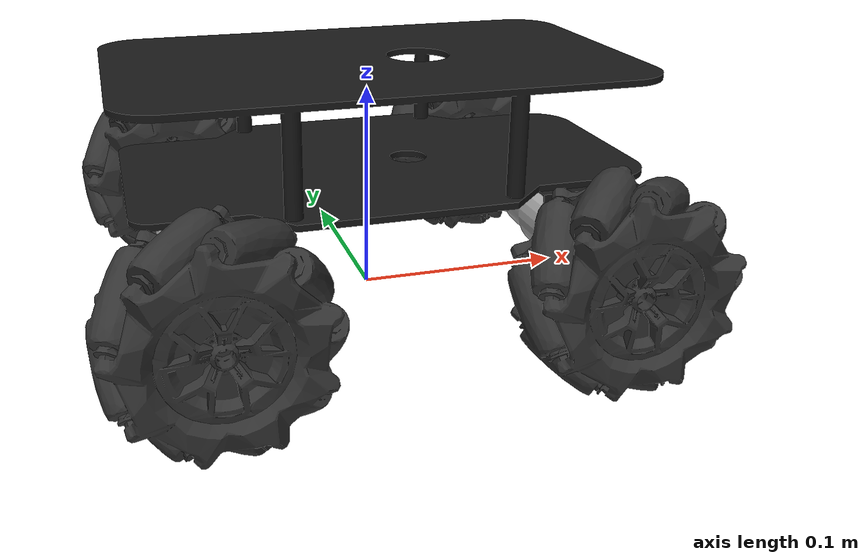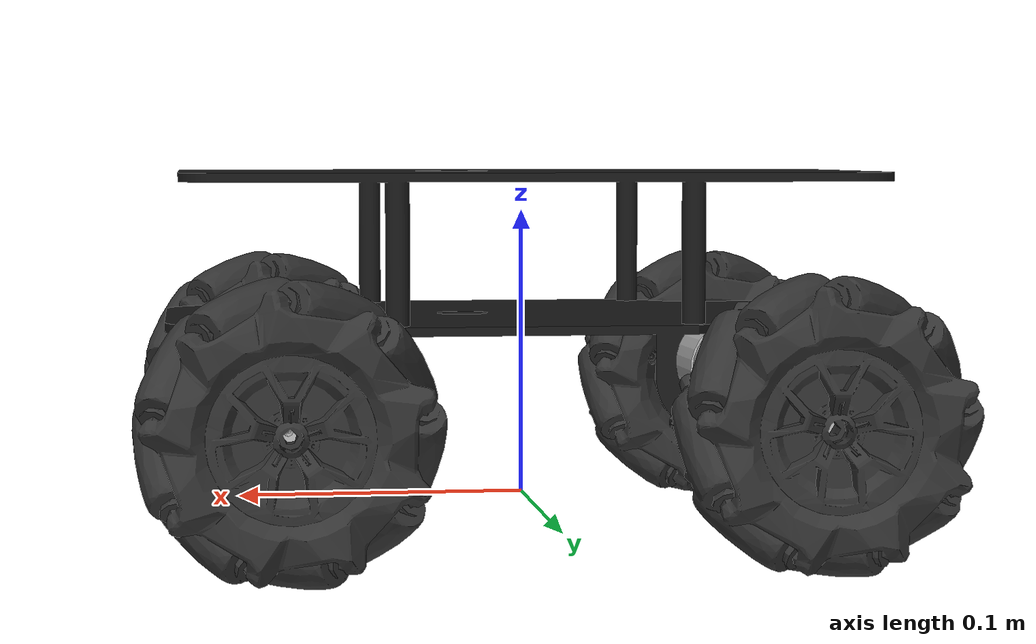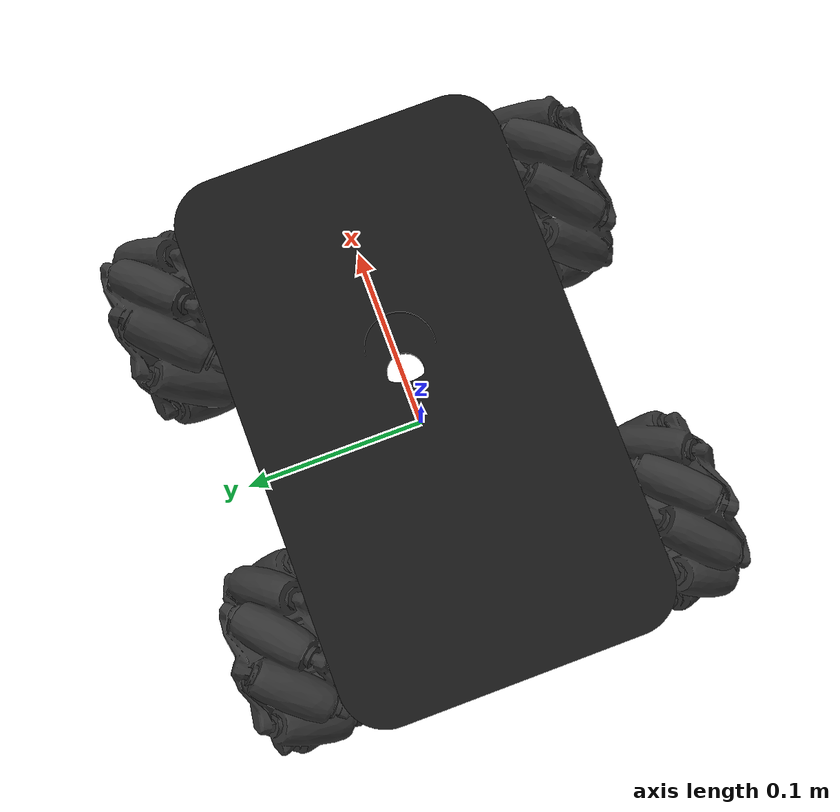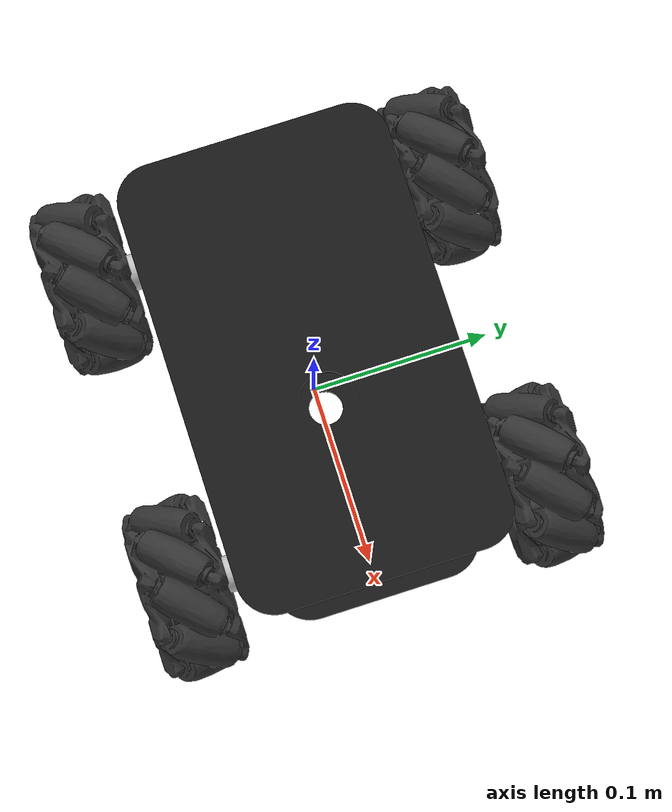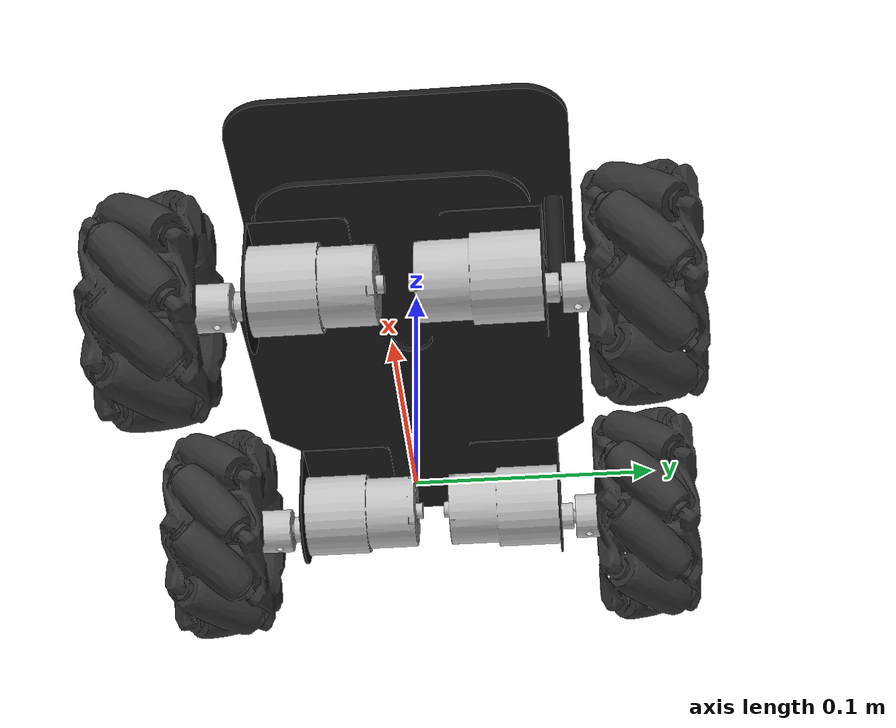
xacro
<?xml version="1.0"?>
<robot name="int_brain" xmlns:xacro="http://www.ros.org/wiki/xacro">

  <xacro:arg name="controllers_yaml" default="" />
  <xacro:arg name="sim" default="true" />

  <xacro:include filename="$(find int_brain_description)/urdf/macros.xacro" />
  <xacro:include filename="$(find int_brain_description)/urdf/materials.xacro" />

  <xacro:if value="$(arg sim)">
    <xacro:include filename="$(find int_brain_description)/urdf/gz.xacro" />
    <xacro:include filename="$(find int_brain_description)/urdf/ros2_control_gz.xacro" />
  </xacro:if>

  <xacro:unless value="$(arg sim)">
    <xacro:include filename="$(find int_brain_description)/urdf/ros2_control_hardware.xacro" />
  </xacro:unless>

  <link name="base_footprint" />

  <link name="base_link">
    <inertial>
      <origin xyz="0.0014585384532783637 3.3995605252501064e-17 0.025758167060085994" rpy="0 0 0" />
      <mass value="0.469" />
      <inertia ixx="0.004037" iyy="0.008793" izz="0.010636" ixy="0.0" iyz="0.0" ixz="8.3e-05" />
    </inertial>
    <visual>
      <origin xyz="0 0 0" rpy="0 0 0" />
      <geometry>
        <mesh filename="file://$(find int_brain_description)/meshes/base_link.stl"
          scale="0.001 0.001 0.001" />
      </geometry>
      <material name="black_acrylic" />
    </visual>
    <collision>
      <origin xyz="0 0 0" rpy="0 0 0" />
      <geometry>
        <mesh filename="file://$(find int_brain_description)/meshes/base_link.stl"
          scale="0.001 0.001 0.001" />
      </geometry>
    </collision>
  </link>

  <link name="imu_link" />

  <joint name="imu_joint" type="fixed">
    <parent link="base_link" />
    <child link="imu_link" />
    <origin xyz="0 0 0.061" rpy="3.1414 0 1.5707" />
  </joint>

  <joint name="base_footprint_to_base_link" type="fixed">
    <parent link="base_footprint" />
    <child link="base_link" />
    <origin xyz="0 0 0.061" rpy="0 0 0" />
  </joint>

  <xacro:motor_assembly_left prefix="front_left" parent_link="base_link">
    <origin xyz="0.086 0.06 -0.021" rpy="-1.5707 0 0" />
  </xacro:motor_assembly_left>

  <xacro:motor_assembly_left prefix="rear_left" parent_link="base_link">
    <origin xyz="-0.086 0.06 -0.021" rpy="-1.5707 0 0" />
  </xacro:motor_assembly_left>

  <xacro:motor_assembly_right prefix="front_right" parent_link="base_link">
    <origin xyz="0.086 -0.06 -0.021" rpy="1.5707 3.1414 0" />
  </xacro:motor_assembly_right>

  <xacro:motor_assembly_right prefix="rear_right" parent_link="base_link">
    <origin xyz="-0.086 -0.06 -0.021" rpy="1.5707 3.1414 0" />
  </xacro:motor_assembly_right>

</robot>

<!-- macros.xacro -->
<robot name="int_brain" xmlns:xacro="http://wiki.ros.org/xacro">
    <xacro:macro name="motor_assembly_right" params="prefix parent_link *origin">
        <joint name="${prefix}_mount_joint" type="fixed">
            <parent link="${parent_link}" />
            <child link="${prefix}_motor_chassis" />
            <xacro:insert_block name="origin" />
        </joint>

        <link name="${prefix}_motor_chassis">
            <inertial>
                <origin xyz="4.591460422141625e-06 7.406434469311372e-05 -0.026615985890666594"
                    rpy="0 0 0" />
                <mass value="0.12073859672562967" />
                <inertia ixx="5.2e-05" iyy="5.2e-05" izz="2.2e-05" ixy="0.0" iyz="-0.0" ixz="0.0" />
            </inertial>
            <visual>
                <origin xyz="0.0024 0 0" rpy="0 0 0.319" />
                <geometry>
                    <mesh filename="file://$(find int_brain_description)/meshes/motor_chassis.stl"
                        scale="0.001 0.001 0.001" />
                </geometry>
                <material name="silver" />
            </visual>
            <collision>
                <origin xyz="0.0024 0 0" rpy="0 0 0.319" />
                <geometry>
                    <mesh filename="file://$(find int_brain_description)/meshes/motor_chassis.stl"
                        scale="0.001 0.001 0.001" />
                </geometry>
            </collision>
        </link>

        <link name="${prefix}_motor_shaft">
            <inertial>
                <origin xyz="0 0 -0.01075" rpy="0 0 0" />
                <mass value="0.004651202181185255" />
                <inertia ixx="1.9e-07" iyy="1.9e-07" izz="0.25e-07" ixy="0.0" iyz="0.0" ixz="0.0" />
            </inertial>
            <visual>
                <origin xyz="-0.000128 -0.006999 -0.0215" rpy="0 0 0" />
                <geometry>
                    <mesh filename="file://$(find int_brain_description)/meshes/motor_shaft.stl"
                        scale="0.001 0.001 0.001" />
                </geometry>
                <material name="silver" />
            </visual>
            <collision>
                <origin xyz="-0.000128 -0.006999 -0.0215" rpy="0 0 0" />
                <geometry>
                    <mesh filename="file://$(find int_brain_description)/meshes/motor_shaft.stl"
                        scale="0.001 0.001 0.001" />
                </geometry>
            </collision>
        </link>

        <joint name="${prefix}_shaft_joint" type="continuous">
            <origin xyz="0.000128 0.006999 0.019" rpy="0 0 0" />
            <parent link="${prefix}_motor_chassis" />
            <child link="${prefix}_motor_shaft" />
            <axis xyz="0.0 0.0 -1.0" />
        </joint>

        <link name="${prefix}_coupler">
            <inertial>
                <origin xyz="-4.2028881321571695e-08 -0.000331924 -0.026254713547370766" rpy="0 0 0" />
                <mass value="0.05134763321280873" />
                <inertia ixx="3e-06" iyy="4e-06" izz="3e-06" ixy="0.0" iyz="-0.0" ixz="-0.0" />
            </inertial>
            <visual>
                <origin xyz="0.0 0.0 0.0" rpy="0 0 0" />
                <geometry>
                    <mesh filename="file://$(find int_brain_description)/meshes/coupler.stl"
                        scale="0.001 0.001 0.001" />
                </geometry>
                <material name="silver" />
            </visual>
            <collision>
                <origin xyz="0.0 0.0 0.0" rpy="0 0 0" />
                <geometry>
                    <mesh filename="file://$(find int_brain_description)/meshes/coupler.stl"
                        scale="0.001 0.001 0.001" />
                </geometry>
            </collision>
        </link>

        <joint name="${prefix}_coupler_joint" type="fixed">
            <origin xyz="0.0 0.0 0.025" rpy="0 0 0" />
            <parent link="${prefix}_motor_shaft" />
            <child link="${prefix}_coupler" />
        </joint>

        <link name="${prefix}_mecanum_wheel">
            <inertial>
                <origin xyz="8.87250126775198e-09 3.426297477759109e-08 0.0007191005329574657"
                    rpy="0 0 0" />
                <mass value="0.13184466520149532" />
                <inertia ixx="0.000103" iyy="0.000103" izz="0.000179" ixy="0.0" iyz="0.0" ixz="-0.0" />
            </inertial>
            <visual>
                <origin xyz="0 0 0" rpy="0 0 0" />
                <geometry>
                    <mesh filename="file://$(find int_brain_description)/meshes/mecanum_wheel.stl"
                        scale="0.001 0.001 0.001" />
                </geometry>
                <material name="black" />
            </visual>
            <collision>
                <origin xyz="0 0 0" rpy="0 0 0" />
                <geometry>
                    <cylinder radius="0.05" length="0.0375" />
                </geometry>
            </collision>
        </link>

        <joint name="${prefix}_wheel_joint" type="fixed">
            <origin xyz="0.0 0.0 -0.005" rpy="0 0 0" />
            <parent link="${prefix}_coupler" />
            <child link="${prefix}_mecanum_wheel" />
        </joint>
    </xacro:macro>

    <xacro:macro name="motor_assembly_left" params="prefix parent_link *origin">
        <joint name="${prefix}_mount_joint" type="fixed">
            <parent link="${parent_link}" />
            <child link="${prefix}_motor_chassis" />
            <xacro:insert_block name="origin" />
        </joint>

        <link name="${prefix}_motor_chassis">
            <inertial>
                <origin xyz="4.591460422141625e-06 7.406434469311372e-05 -0.026615985890666594"
                    rpy="0 0 0" />
                <mass value="0.12073859672562967" />
                <inertia ixx="5.2e-05" iyy="5.2e-05" izz="2.2e-05" ixy="0.0" iyz="-0.0" ixz="0.0" />
            </inertial>
            <visual>
                <origin xyz="0.0024 0 0" rpy="0 0 0.319" />
                <geometry>
                    <mesh filename="file://$(find int_brain_description)/meshes/motor_chassis.stl"
                        scale="0.001 0.001 0.001" />
                </geometry>
                <material name="silver" />
            </visual>
            <collision>
                <origin xyz="0.0024 0 0" rpy="0 0 0.319" />
                <geometry>
                    <mesh filename="file://$(find int_brain_description)/meshes/motor_chassis.stl"
                        scale="0.001 0.001 0.001" />
                </geometry>
            </collision>
        </link>

        <link name="${prefix}_motor_shaft">
            <inertial>
                <origin xyz="0 0 -0.01075" rpy="0 0 0" />
                <mass value="0.004651202181185255" />
                <inertia ixx="1.9e-07" iyy="1.9e-07" izz="0.25e-07" ixy="0.0" iyz="0.0" ixz="0.0" />
            </inertial>
            <visual>
                <origin xyz="-0.000128 -0.006999 -0.0215" rpy="0 0 0" />
                <geometry>
                    <mesh filename="file://$(find int_brain_description)/meshes/motor_shaft.stl"
                        scale="0.001 0.001 0.001" />
                </geometry>
                <material name="silver" />
            </visual>
            <collision>
                <origin xyz="-0.000128 -0.006999 -0.0215" rpy="0 0 0" />
                <geometry>
                    <mesh filename="file://$(find int_brain_description)/meshes/motor_shaft.stl"
                        scale="0.001 0.001 0.001" />
                </geometry>
            </collision>
        </link>

        <joint name="${prefix}_shaft_joint" type="continuous">
            <origin xyz="0.000128 0.006999 0.019" rpy="0 0 0" />
            <parent link="${prefix}_motor_chassis" />
            <child link="${prefix}_motor_shaft" />
            <axis xyz="0.0 0.0 1.0" />
        </joint>

        <link name="${prefix}_coupler">
            <inertial>
                <origin xyz="-4.2028881321571695e-08 -0.000331924 -0.026254713547370766" rpy="0 0 0" />
                <mass value="0.05134763321280873" />
                <inertia ixx="3e-06" iyy="4e-06" izz="3e-06" ixy="0.0" iyz="-0.0" ixz="-0.0" />
            </inertial>
            <visual>
                <origin xyz="0.0 0.0 0.0" rpy="0 0 0" />
                <geometry>
                    <mesh filename="file://$(find int_brain_description)/meshes/coupler.stl"
                        scale="0.001 0.001 0.001" />
                </geometry>
                <material name="silver" />
            </visual>
            <collision>
                <origin xyz="0.0 0.0 0.0" rpy="0 0 0" />
                <geometry>
                    <mesh filename="file://$(find int_brain_description)/meshes/coupler.stl"
                        scale="0.001 0.001 0.001" />
                </geometry>
            </collision>
        </link>

        <joint name="${prefix}_coupler_joint" type="fixed">
            <origin xyz="0.0 0.0 0.025" rpy="0 0 0" />
            <parent link="${prefix}_motor_shaft" />
            <child link="${prefix}_coupler" />
        </joint>

        <link name="${prefix}_mecanum_wheel">
            <inertial>
                <origin xyz="8.87250126775198e-09 3.426297477759109e-08 0.0007191005329574657"
                    rpy="0 0 0" />
                <mass value="0.13184466520149532" />
                <inertia ixx="0.000103" iyy="0.000103" izz="0.000179" ixy="0.0" iyz="0.0" ixz="-0.0" />
            </inertial>
            <visual>
                <origin xyz="0 0 0" rpy="0 0 0" />
                <geometry>
                    <mesh filename="file://$(find int_brain_description)/meshes/mecanum_wheel.stl"
                        scale="0.001 0.001 0.001" />
                </geometry>
                <material name="black" />
            </visual>
            <collision>
                <origin xyz="0 0 0" rpy="0 0 0" />
                <geometry>
                    <cylinder radius="0.05" length="0.0375" />
                </geometry>
            </collision>
        </link>

        <joint name="${prefix}_wheel_joint" type="fixed">
            <origin xyz="0.0 0.0 -0.005" rpy="0 0 0" />
            <parent link="${prefix}_coupler" />
            <child link="${prefix}_mecanum_wheel" />
        </joint>
    </xacro:macro>
</robot>

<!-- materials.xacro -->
<robot name="int_brain" xmlns:xacro="http://wiki.ros.org/xacro">
    <material name="silver">
        <color rgba="0.75 0.75 0.75 1.0" />
    </material>
    <material name="black">
        <color rgba="0.2 0.2 0.2 1.0" />
    </material>
    <material name="black_acrylic">
        <color rgba="0.1 0.1 0.1 1.0" />
    </material>
</robot>
